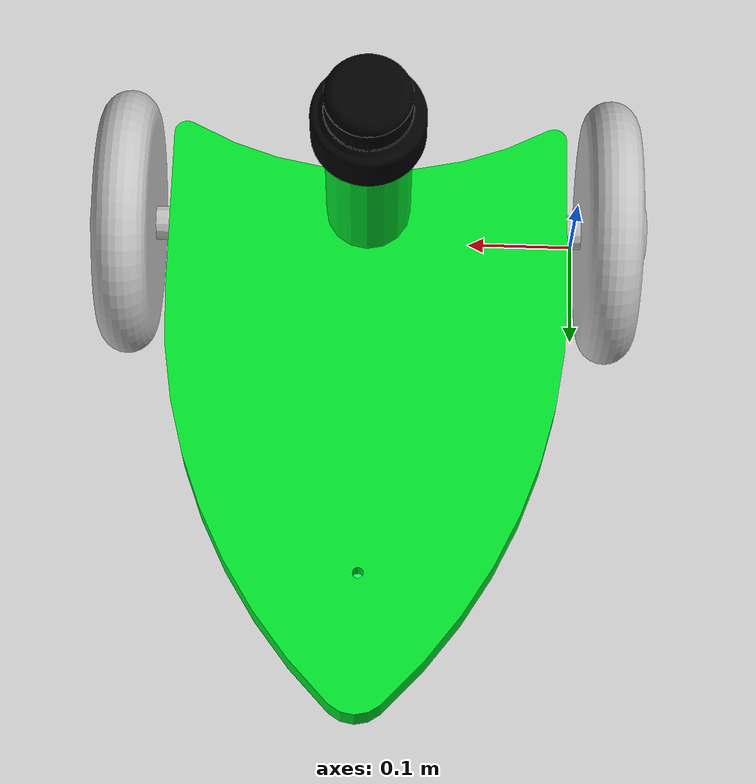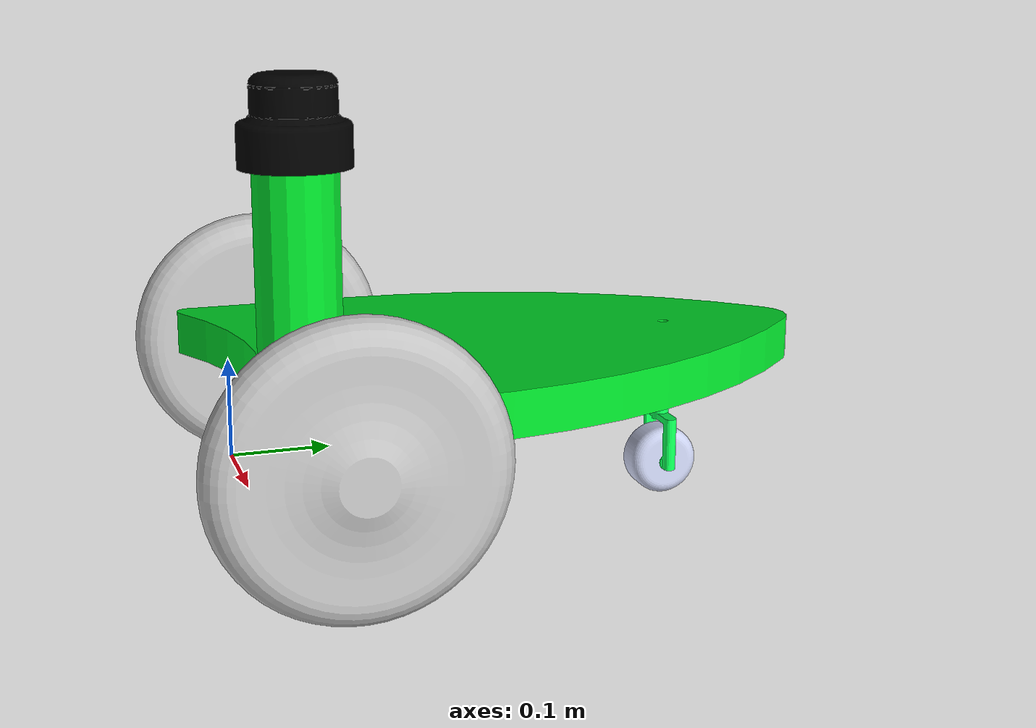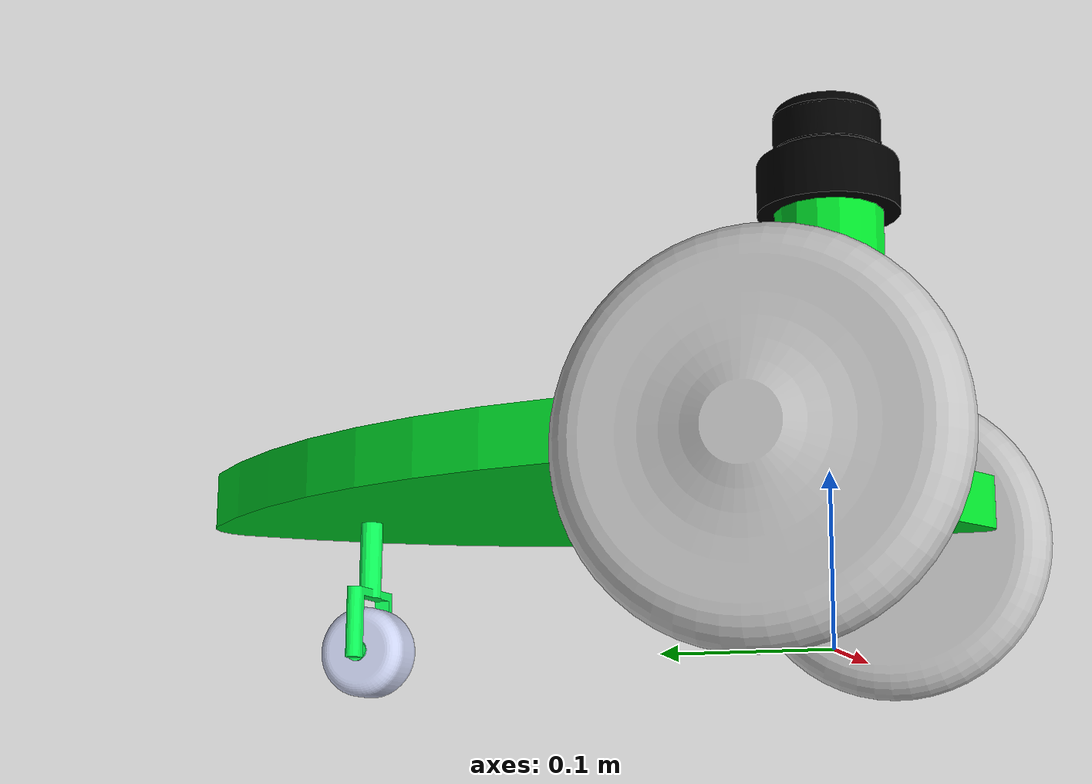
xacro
<?xml version="1.0" encoding="utf-8"?>
<robot name="rtvfin" xmlns:xacro="http://www.ros.org/wiki/xacro">
  <xacro:include filename="$(find rtvfin)/urdf/robots.gazebo.xacro" />
  <link name="dummy">
   </link>
  <link name="base_link">
    <inertial>
      <origin
        xyz="0.1975 0.14943 -0.17868"
        rpy="0 0 0" />
      <mass
        value="6.851" />
      <inertia
        ixx="0.13782"
        ixy="-1.1943E-17"
        ixz="6.9346E-17"
        iyy="0.18627"
        iyz="-0.010532"
        izz="0.06655" />
    </inertial>
    <visual>
      <origin
        xyz="0 0 0"
        rpy="0 0 0" />
      <geometry>
        <mesh
          filename="package://rtvfin/meshes/base_link.STL" />
      </geometry>
      <material
        name="">
        <color
          rgba="0 0.87843 0.16471 1" />
      </material>
    </visual>
    <collision>
      <origin
        xyz="0 0 0"
        rpy="0 0 0" />
      <geometry>
        <mesh
          filename="package://rtvfin/meshes/base_link.STL" />
      </geometry>
    </collision>
  </link>
  <joint name="dummy_joint" type="fixed">
     <parent link="dummy"/>
     <child link="base_link"/>
  </joint>
  <link name="left_wheel_link">
    <inertial>
      <origin
        xyz="-0.025442562384682 0 -1.38777878078145E-17"
        rpy="0 0 0" />
      <mass
        value="2.23208588786701" />
      <inertia
        ixx="0.0150507702527097"
        ixy="-7.83936393224049E-19"
        ixz="9.01679053389912E-19"
        iyy="0.00801207149472829"
        iyz="-6.50521303491303E-19"
        izz="0.00801207149472829" />
    </inertial>
    <visual>
      <origin
        xyz="0 0 0"
        rpy="0 0 0" />
      <geometry>
        <mesh
          filename="package://rtvfin/meshes/left_wheel_link.STL" />
      </geometry>
      <material
        name="">
        <color
          rgba="0.752941176470588 0.752941176470588 0.752941176470588 1" />
      </material>
    </visual>
    <collision>
      <origin
        xyz="0 0 0"
        rpy="0 0 0" />
      <geometry>
        <mesh
          filename="package://rtvfin/meshes/left_wheel_link.STL" />
      </geometry>
    </collision>
  </link>
  <joint name="left_link"
    type="continuous">
    <origin
      xyz="0 0.035844 0.11868"
      rpy="-2.1829 0 0" />
    <parent
      link="base_link" />
    <child
      link="left_wheel_link" />
    <axis
      xyz="1 0 0" />
  </joint>
  <link name="right_wheel_link">
    <inertial>
      <origin
        xyz="-0.083442562384682 -2.08166817117217E-17 2.77555756156289E-17"
        rpy="0 0 0" />
      <mass
        value="2.23208588786701" />
      <inertia
        ixx="0.0150507702527097"
        ixy="1.04707723527385E-18"
        ixz="4.47140523783489E-19"
        iyy="0.0080120714947283"
        iyz="0"
        izz="0.0080120714947283" />
    </inertial>
    <visual>
      <origin
        xyz="0 0 0"
        rpy="0 0 0" />
      <geometry>
        <mesh
          filename="package://rtvfin/meshes/right_wheel_link.STL" />
      </geometry>
      <material
        name="">
        <color
          rgba="0.752941176470588 0.752941176470588 0.752941176470588 1" />
      </material>
    </visual>
    <collision>
      <origin
        xyz="0 0 0"
        rpy="0 0 0" />
      <geometry>
        <mesh
          filename="package://rtvfin/meshes/right_wheel_link.STL" />
      </geometry>
    </collision>
  </link>
  <joint name="right_link"
    type="continuous">
    <origin
      xyz="0.337 0.035844 0.11868"
      rpy="2.9765 0 3.1416" />
    <parent
      link="base_link" />
    <child
      link="right_wheel_link" />
    <axis
      xyz="1 0 0" />
  </joint>
  <link name="little_body_link">
    <inertial>
      <origin
        xyz="-2.67674771237125E-13 0.0459540094478621 -7.64113969988212E-05"
        rpy="0 0 0" />
      <mass
        value="0.0309195136006862" />
      <inertia
        ixx="4.25932255697471E-05"
        ixy="-7.90156577307605E-17"
        ixz="-2.31994972687621E-14"
        iyy="7.40957987340259E-06"
        iyz="-2.25518117414848E-08"
        izz="3.59714206217553E-05" />
    </inertial>
    <visual>
      <origin
        xyz="0 0 0"
        rpy="0 0 0" />
      <geometry>
        <mesh
          filename="package://rtvfin/meshes/little_body_link.STL" />
      </geometry>
      <material
        name="">
        <color
          rgba="0.0392156862745098 1 0.337254901960784 1" />
      </material>
    </visual>
    <collision>
      <origin
        xyz="0 0 0"
        rpy="0 0 0" />
      <geometry>
        <mesh
          filename="package://rtvfin/meshes/little_body_link.STL" />
      </geometry>
    </collision>
  </link>
  <joint name="body_link"
    type="fixed">
    <origin
      xyz="0.1975 0.38084 0.017124"
      rpy="1.5708 0 1.5708" />
    <parent
      link="base_link" />
    <child
      link="little_body_link" />
    <axis
      xyz="0 1 0" />
  </joint>
  <link name="little_wheel_link">
    <inertial>
      <origin
        xyz="0.00121984656174834 -0.00218219485055544 -9.37075362563156E-05"
        rpy="0 0 0" />
      <mass
        value="0.105305674206665" />
      <inertia
        ixx="3.75986355552618E-05"
        ixy="0"
        ixz="4.8958160903679E-14"
        iyy="3.75986355552618E-05"
        iyz="2.73676072745913E-14"
        izz="5.36078275271206E-05" />
    </inertial>
    <visual>
      <origin
        xyz="0 0 0"
        rpy="0 0 0" />
      <geometry>
        <mesh
          filename="package://rtvfin/meshes/little_wheel_link.STL" />
      </geometry>
      <material
        name="">
        <color
          rgba="0.792156862745098 0.819607843137255 0.933333333333333 1" />
      </material>
    </visual>
    <collision>
      <origin
        xyz="0 0 0"
        rpy="0 0 0" />
      <geometry>
        <mesh
          filename="package://rtvfin/meshes/little_wheel_link.STL" />
      </geometry>
    </collision>
  </link>
  <joint name="little_link"
    type="continuous">
    <origin
      xyz="0 0.01 0"
      rpy="0 0 -0.50973" />
    <parent
      link="little_body_link" />
    <child
      link="little_wheel_link" />
    <axis
      xyz="0 0 1" />
  </joint>
  <link name="lidar_scaner_link">
    <inertial>
      <origin
        xyz="0 -4.16333634234434E-17 0.0342165768302536"
        rpy="0 0 0" />
      <mass
        value="0.491430460551325" />
      <inertia
        ixx="0.000499328268367785"
        ixy="0"
        ixz="4.35781389685268E-20"
        iyy="0.000499328268367785"
        iyz="-3.36563846024757E-21"
        izz="0.00051728611281361" />
    </inertial>
    <visual>
      <origin
        xyz="0 0 0"
        rpy="0 0 0" />
      <geometry>
        <mesh
          filename="package://rtvfin/meshes/lidar_scaner_link.STL" />
      </geometry>
      <material
        name="">
        <color
          rgba="0 0 0 1" />
      </material>
    </visual>
    <collision>
      <origin
        xyz="0 0 0"
        rpy="0 0 0" />
      <geometry>
        <mesh
          filename="package://rtvfin/meshes/lidar_scaner_link.STL" />
      </geometry>
    </collision>
  </link>
  <joint name="lidar_link"
    type="fixed">
    <origin
      xyz="0.1975 0.035844 0.31868"
      rpy="0 0 0.79166" />
    <parent
      link="base_link" />
    <child
      link="lidar_scaner_link" />
    <axis
      xyz="0 0 1" />
  </joint>
</robot>
